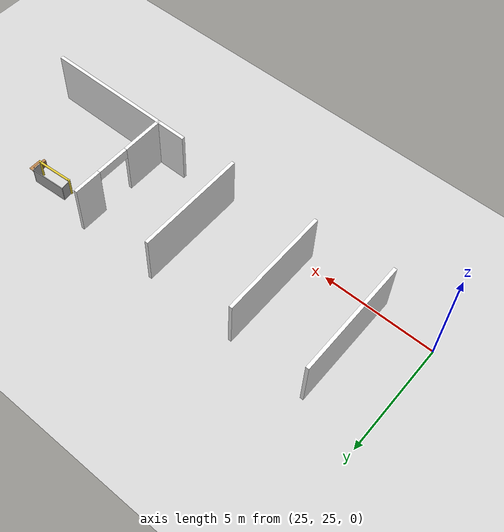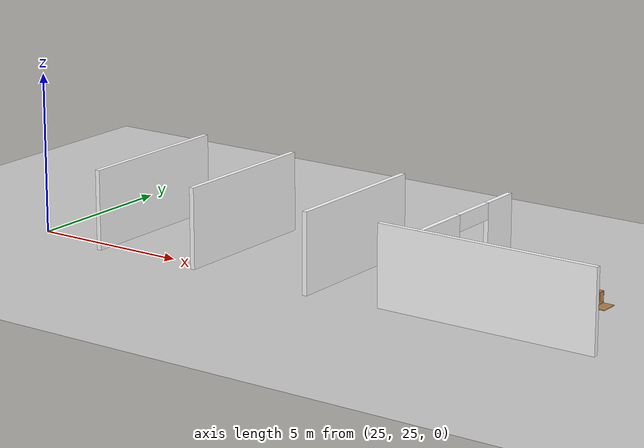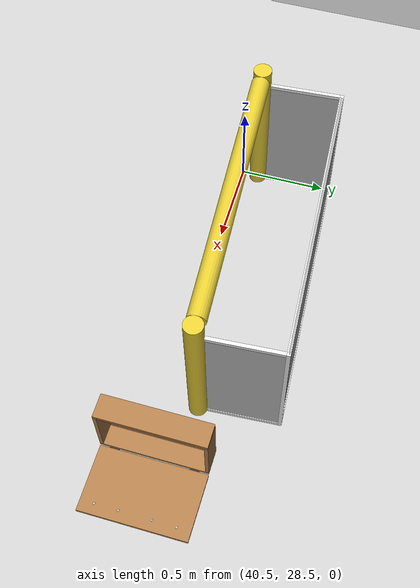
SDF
<sdf version="1.6">
 <world name="default">
  <model name="ground_plane">
   <static>1</static>
   <link name="link">
    <collision name="collision">
     <geometry><plane><normal>0 0 1</normal><size>100 100</size></plane></geometry>
     <surface><friction><ode><mu>100</mu><mu2>50</mu2></ode></friction></surface>
    </collision>
    <visual name="visual">
     <cast_shadows>0</cast_shadows>
     <geometry><plane><normal>0 0 1</normal><size>100 100</size></plane></geometry>
     <material>
      <script>
       <uri>model://office_env/materials/scripts</uri>
       <uri>model://office_env/materials/textures</uri>
       <name>wall</name>
      </script>
     </material>
    </visual>
   </link>
  </model>
  <model name="aule_N">
   <pose>0.1887 -1.4289 0 0 -0 0</pose>
   <link name="Wall_174">
    <collision name="Wall_174_Collision">
     <geometry><box><size>5 0.15 2.5</size></box></geometry>
     <pose>0 0 1.25 0 -0 0</pose>
    </collision>
    <visual name="Wall_174_Visual">
     <pose>0 0 1.25 0 -0 0</pose>
     <geometry><box><size>5 0.15 2.5</size></box></geometry>
     <material>
      <script>
       <uri>model://office_env/materials/scripts</uri>
       <uri>model://office_env/materials/textures</uri>
       <name>wall</name>
      </script>
      <ambient>1 1 1 1</ambient>
     </material>
    </visual>
    <pose>34.9984 28.4203 0 0 -0 1.5708</pose>
   </link>
   <link name="Wall_176">
    <collision name="Wall_176_Collision">
     <geometry><box><size>5.25 0.15 2.5</size></box></geometry>
     <pose>0 0 1.25 0 -0 0</pose>
    </collision>
    <visual name="Wall_176_Visual">
     <pose>0 0 1.25 0 -0 0</pose>
     <geometry><box><size>5.25 0.15 2.5</size></box></geometry>
     <material>
      <script>
       <uri>model://office_env/materials/scripts</uri>
       <uri>model://office_env/materials/textures</uri>
       <name>wall</name>
      </script>
      <ambient>1 1 1 1</ambient>
     </material>
    </visual>
    <pose>27.3703 28.4806 0 0 -0 1.5708</pose>
   </link>
   <link name="Wall_178">
    <collision name="Wall_178_Collision">
     <geometry><box><size>5 0.15 2.5</size></box></geometry>
     <pose>0 0 1.25 0 -0 0</pose>
    </collision>
    <visual name="Wall_178_Visual">
     <pose>0 0 1.25 0 -0 0</pose>
     <geometry><box><size>5 0.15 2.5</size></box></geometry>
     <material>
      <script>
       <uri>model://office_env/materials/scripts</uri>
       <uri>model://office_env/materials/textures</uri>
       <name>wall</name>
      </script>
      <ambient>1 1 1 1</ambient>
     </material>
    </visual>
    <pose>30.8596 28.4952 0 0 -0 1.5708</pose>
   </link>
   <link name="Wall_182">
    <collision name="Wall_182_Collision">
     <geometry><box><size>7 0.15 2.5</size></box></geometry>
     <pose>0 0 1.25 0 -0 0</pose>
    </collision>
    <visual name="Wall_182_Visual">
     <pose>0 0 1.25 0 -0 0</pose>
     <geometry><box><size>7 0.15 2.5</size></box></geometry>
     <material>
      <script>
       <uri>model://office_env/materials/scripts</uri>
       <uri>model://office_env/materials/textures</uri>
       <name>wall</name>
      </script>
      <ambient>1 1 1 1</ambient>
     </material>
    </visual>
    <pose>40.8006 26.2918 0 0 -0 0</pose>
   </link>
   <link name="Wall_184">
    <pose>38.6756 28.6028 0 0 -0 1.5708</pose>
    <visual name="Wall_184_Visual_0">
     <pose>-1.38657 0 1.25 0 -0 0</pose>
     <geometry><box><size>1.97686 0.15 2.5</size></box></geometry>
     <material>
      <script>
       <uri>model://office_env/materials/scripts</uri>
       <uri>model://office_env/materials/textures</uri>
       <name>wall</name>
      </script>
      <ambient>1 1 1 1</ambient>
     </material>
    </visual>
    <collision name="Wall_184_Collision_0">
     <geometry><box><size>1.97686 0.15 2.5</size></box></geometry>
     <pose>-1.38657 0 1.25 0 -0 0</pose>
    </collision>
    <visual name="Wall_184_Visual_1">
     <pose>1.73843 0 1.25 0 -0 0</pose>
     <geometry><box><size>1.27314 0.15 2.5</size></box></geometry>
     <material>
      <script>
       <uri>model://office_env/materials/scripts</uri>
       <uri>model://office_env/materials/textures</uri>
       <name>wall</name>
      </script>
      <ambient>1 1 1 1</ambient>
     </material>
    </visual>
    <collision name="Wall_184_Collision_1">
     <geometry><box><size>1.27314 0.15 2.5</size></box></geometry>
     <pose>1.73843 0 1.25 0 -0 0</pose>
    </collision>
    <visual name="Wall_184_Visual_2">
     <pose>0.351864 0 2.25 0 -0 0</pose>
     <geometry><box><size>1.5 0.15 0.5</size></box></geometry>
     <material>
      <script>
       <uri>model://office_env/materials/scripts</uri>
       <uri>model://office_env/materials/textures</uri>
       <name>wall</name>
      </script>
      <ambient>1 1 1 1</ambient>
     </material>
    </visual>
    <collision name="Wall_184_Collision_2">
     <geometry><box><size>1.5 0.15 0.5</size></box></geometry>
     <pose>0.351864 0 2.25 0 -0 0</pose>
    </collision>
   </link>
   <static>1</static>
  </model>
  <model name="RoboCup 2014 SPL Goal">
   <static>1</static>
   <link name="left_post">
    <pose>0 0.8 0.45 0 -0 0</pose>
    <collision name="collision">
     <geometry><cylinder><radius>0.05</radius><length>0.9</length></cylinder></geometry>
    </collision>
    <visual name="visual">
     <geometry><cylinder><radius>0.05</radius><length>0.9</length></cylinder></geometry>
     <material>
      <script><uri>file://media/materials/scripts/gazebo.material</uri><name>Gazebo/ZincYellow</name></script>
     </material>
    </visual>
   </link>
   <link name="left_support_horiz_lower">
    <pose>0.24 0.8 0.01 0 -0 0</pose>
    <collision name="collision"><geometry><box><size>0.38 0.02 0.02</size></box></geometry></collision>
    <visual name="visual">
     <geometry><box><size>0.38 0.02 0.02</size></box></geometry>
     <material>
      <script><uri>file://media/materials/scripts/gazebo.material</uri><name>Gazebo/White</name></script>
     </material>
    </visual>
   </link>
   <link name="left_support_horiz_upper">
    <pose>0.24 0.8 0.79 0 -0 0</pose>
    <collision name="collision"><geometry><box><size>0.38 0.02 0.02</size></box></geometry></collision>
    <visual name="visual">
     <geometry><box><size>0.38 0.02 0.02</size></box></geometry>
     <material>
      <script><uri>file://media/materials/scripts/gazebo.material</uri><name>Gazebo/White</name></script>
     </material>
    </visual>
   </link>
   <link name="left_support_vertical">
    <pose>0.44 0.8 0.4 3.14159 1.57079 3.14159</pose>
    <collision name="collision"><geometry><box><size>0.8 0.02 0.02</size></box></geometry></collision>
    <visual name="visual">
     <geometry><box><size>0.8 0.02 0.02</size></box></geometry>
     <material>
      <script><uri>file://media/materials/scripts/gazebo.material</uri><name>Gazebo/White</name></script>
     </material>
    </visual>
   </link>
   <link name="right_support_horiz_lower">
    <pose>0.24 -0.8 0.01 0 -0 0</pose>
    <collision name="collision"><geometry><box><size>0.38 0.02 0.02</size></box></geometry></collision>
    <visual name="visual">
     <geometry><box><size>0.38 0.02 0.02</size></box></geometry>
     <material>
      <script><uri>file://media/materials/scripts/gazebo.material</uri><name>Gazebo/White</name></script>
     </material>
    </visual>
   </link>
   <link name="right_support_horiz_upper">
    <pose>0.24 -0.8 0.79 0 -0 0</pose>
    <collision name="collision"><geometry><box><size>0.38 0.02 0.02</size></box></geometry></collision>
    <visual name="visual">
     <geometry><box><size>0.38 0.02 0.02</size></box></geometry>
     <material>
      <script><uri>file://media/materials/scripts/gazebo.material</uri><name>Gazebo/White</name></script>
     </material>
    </visual>
   </link>
   <link name="right_support_vertical">
    <pose>0.44 -0.8 0.4 3.14159 1.57079 3.14159</pose>
    <collision name="collision"><geometry><box><size>0.8 0.02 0.02</size></box></geometry></collision>
    <visual name="visual">
     <geometry><box><size>0.8 0.02 0.02</size></box></geometry>
     <material>
      <script><uri>file://media/materials/scripts/gazebo.material</uri><name>Gazebo/White</name></script>
     </material>
    </visual>
   </link>
   <link name="center_support_horiz_lower">
    <pose>0.44 0 0.01 3.14159 1.57079 3.14159</pose>
    <collision name="collision"><geometry><box><size>0.02 1.58 0.02</size></box></geometry></collision>
    <visual name="visual">
     <geometry><box><size>0.02 1.58 0.02</size></box></geometry>
     <material>
      <script><uri>file://media/materials/scripts/gazebo.material</uri><name>Gazebo/White</name></script>
     </material>
    </visual>
   </link>
   <link name="center_support_horiz_upper">
    <pose>0.44 0 0.79 3.14159 1.57079 3.14159</pose>
    <collision name="collision"><geometry><box><size>0.02 1.58 0.02</size></box></geometry></collision>
    <visual name="visual">
     <geometry><box><size>0.02 1.58 0.02</size></box></geometry>
     <material>
      <script><uri>file://media/materials/scripts/gazebo.material</uri><name>Gazebo/White</name></script>
     </material>
    </visual>
   </link>
   <link name="right_post">
    <pose>0 -0.8 0.45 0 -0 0</pose>
    <collision name="collision">
     <geometry><cylinder><radius>0.05</radius><length>0.9</length></cylinder></geometry>
    </collision>
    <visual name="visual">
     <geometry><cylinder><radius>0.05</radius><length>0.9</length></cylinder></geometry>
     <material>
      <script><uri>file://media/materials/scripts/gazebo.material</uri><name>Gazebo/ZincYellow</name></script>
     </material>
    </visual>
   </link>
   <link name="crossbar">
    <pose>0 0 0.85 1.57 1.57 0</pose>
    <collision name="collision">
     <geometry><cylinder><radius>0.05</radius><length>1.5</length></cylinder></geometry>
    </collision>
    <visual name="visual">
     <geometry><cylinder><radius>0.05</radius><length>1.5</length></cylinder></geometry>
     <material>
      <script><uri>file://media/materials/scripts/gazebo.material</uri><name>Gazebo/ZincYellow</name></script>
     </material>
    </visual>
   </link>
   <link name="center_net">
    <pose>0.44 0 0.4 0 -0 0</pose>
    <collision name="collision"><geometry><box><size>0.01 1.6 0.8</size></box></geometry></collision>
    <visual name="visual">
     <geometry><box><size>0.01 1.6 0.8</size></box></geometry>
     <material>
      <script>
       <uri>model://robocup09_spl_field/materials/scripts/</uri>
       <uri>model://robocup09_spl_field/materials/textures/</uri>
       <name>RoboCup/Net</name>
      </script>
     </material>
    </visual>
   </link>
   <link name="left_net">
    <pose>0.24 0.8 0.4 0 -0 0</pose>
    <collision name="collision"><geometry><box><size>0.38 0.01 0.76</size></box></geometry></collision>
    <visual name="visual">
     <geometry><box><size>0.38 0.01 0.76</size></box></geometry>
     <material>
      <script>
       <uri>model://robocup09_spl_field/materials/scripts/</uri>
       <uri>model://robocup09_spl_field/materials/textures/</uri>
       <name>RoboCup/Net</name>
      </script>
     </material>
    </visual>
   </link>
   <link name="right_net">
    <pose>0.24 -0.8 0.4 0 -0 0</pose>
    <collision name="collision"><geometry><box><size>0.38 0.01 0.76</size></box></geometry></collision>
    <visual name="visual">
     <geometry><box><size>0.38 0.01 0.76</size></box></geometry>
     <material>
      <script>
       <uri>model://robocup09_spl_field/materials/scripts/</uri>
       <uri>model://robocup09_spl_field/materials/textures/</uri>
       <name>RoboCup/Net</name>
      </script>
     </material>
    </visual>
   </link>
   <pose>41.3092 28.6447 0 0 -0 1.63389</pose>
  </model>
  <model name="wooden_case">
   <link name="base">
    <pose>0 0 0.024 0 -0 0</pose>
    <inertial>
     <pose>-0.022184 0 0.171592 0 -0 0</pose>
     <mass>3.96264</mass>
     <inertia>
      <ixx>0.213536</ixx>
      <ixy>0</ixy>
      <ixz>0.000779377</ixz>
      <iyy>0.0708943</iyy>
      <iyz>0</iyz>
      <izz>0.154604</izz>
     </inertia>
    </inertial>
    <collision name="collision_back">
     <pose>-0.053975 0 0.1778 0 -0 0</pose>
     <geometry><box><size>0.01905 0.5461 0.3175</size></box></geometry>
     <surface>
      <contact>
       <poissons_ratio>0.347</poissons_ratio>
       <elastic_modulus>8.8e+09</elastic_modulus>
       <ode><kp>100000</kp><kd>100</kd><max_vel>100</max_vel><min_depth>0.001</min_depth></ode>
      </contact>
      <friction>
       <torsional>
        <coefficient>1</coefficient>
        <use_patch_radius>0</use_patch_radius>
        <surface_radius>0.01</surface_radius>
       </torsional>
      </friction>
     </surface>
    </collision>
    <visual name="visual_back">
     <pose>-0.053975 0 0.1778 0 -0 0</pose>
     <geometry><box><size>0.01905 0.5461 0.3175</size></box></geometry>
     <material>
      <script><uri>file://media/materials/scripts/gazebo.material</uri><name>Gazebo/Wood</name></script>
     </material>
    </visual>
    <collision name="collision_bottom">
     <pose>0 0 0.009525 0 -0 0</pose>
     <geometry><box><size>0.127 0.5842 0.01905</size></box></geometry>
     <surface>
      <contact>
       <poissons_ratio>0.347</poissons_ratio>
       <elastic_modulus>8.8e+09</elastic_modulus>
       <ode><kp>100000</kp><kd>100</kd><max_vel>100</max_vel><min_depth>0.001</min_depth></ode>
      </contact>
      <friction>
       <torsional>
        <coefficient>1</coefficient>
        <use_patch_radius>0</use_patch_radius>
        <surface_radius>0.01</surface_radius>
       </torsional>
      </friction>
     </surface>
    </collision>
    <visual name="visual_bottom">
     <pose>0 0 0.009525 0 -0 0</pose>
     <geometry><box><size>0.127 0.5842 0.01905</size></box></geometry>
     <material>
      <script><uri>file://media/materials/scripts/gazebo.material</uri><name>Gazebo/Wood</name></script>
     </material>
    </visual>
    <collision name="collision_top">
     <pose>0 0 0.346075 0 -0 0</pose>
     <geometry><box><size>0.127 0.5842 0.01905</size></box></geometry>
     <surface>
      <contact>
       <poissons_ratio>0.347</poissons_ratio>
       <elastic_modulus>8.8e+09</elastic_modulus>
       <ode><kp>100000</kp><kd>100</kd><max_vel>100</max_vel><min_depth>0.001</min_depth></ode>
      </contact>
      <friction>
       <torsional>
        <coefficient>1</coefficient>
        <use_patch_radius>0</use_patch_radius>
        <surface_radius>0.01</surface_radius>
       </torsional>
      </friction>
     </surface>
    </collision>
    <visual name="visual_top">
     <pose>0 0 0.346075 0 -0 0</pose>
     <geometry><box><size>0.127 0.5842 0.01905</size></box></geometry>
     <material>
      <script><uri>file://media/materials/scripts/gazebo.material</uri><name>Gazebo/Wood</name></script>
     </material>
    </visual>
    <collision name="collision_left">
     <pose>0 -0.282575 0.1778 0 -0 0</pose>
     <geometry><box><size>0.127 0.01905 0.3175</size></box></geometry>
     <surface>
      <contact>
       <poissons_ratio>0.347</poissons_ratio>
       <elastic_modulus>8.8e+09</elastic_modulus>
       <ode><kp>100000</kp><kd>100</kd><max_vel>100</max_vel><min_depth>0.001</min_depth></ode>
      </contact>
      <friction>
       <torsional>
        <coefficient>1</coefficient>
        <use_patch_radius>0</use_patch_radius>
        <surface_radius>0.01</surface_radius>
       </torsional>
      </friction>
     </surface>
    </collision>
    <visual name="visual_left">
     <pose>0 -0.282575 0.1778 0 -0 0</pose>
     <geometry><box><size>0.127 0.01905 0.3175</size></box></geometry>
     <material>
      <script><uri>file://media/materials/scripts/gazebo.material</uri><name>Gazebo/Wood</name></script>
     </material>
    </visual>
    <collision name="collision_right">
     <pose>0 0.282575 0.1778 0 -0 0</pose>
     <geometry><box><size>0.127 0.01905 0.3175</size></box></geometry>
     <surface>
      <contact>
       <poissons_ratio>0.347</poissons_ratio>
       <elastic_modulus>8.8e+09</elastic_modulus>
       <ode><kp>100000</kp><kd>100</kd><max_vel>100</max_vel><min_depth>0.001</min_depth></ode>
      </contact>
      <friction>
       <torsional>
        <coefficient>1</coefficient>
        <use_patch_radius>0</use_patch_radius>
        <surface_radius>0.01</surface_radius>
       </torsional>
      </friction>
     </surface>
    </collision>
    <visual name="visual_right">
     <pose>0 0.282575 0.1778 0 -0 0</pose>
     <geometry><box><size>0.127 0.01905 0.3175</size></box></geometry>
     <material>
      <script><uri>file://media/materials/scripts/gazebo.material</uri><name>Gazebo/Wood</name></script>
     </material>
    </visual>
    <collision name="collision_block_left">
     <pose>0.0095 -0.2151 -0.012 0 -0 0</pose>
     <geometry><box><size>0.108 0.05 0.024</size></box></geometry>
     <surface>
      <contact>
       <poissons_ratio>0.347</poissons_ratio>
       <elastic_modulus>8.8e+09</elastic_modulus>
       <ode><kp>100000</kp><kd>100</kd><max_vel>100</max_vel><min_depth>0.001</min_depth></ode>
      </contact>
      <friction>
       <torsional>
        <coefficient>1</coefficient>
        <use_patch_radius>0</use_patch_radius>
        <surface_radius>0.01</surface_radius>
       </torsional>
      </friction>
     </surface>
    </collision>
    <visual name="visual_block_left">
     <pose>0.0095 -0.2151 -0.012 0 -0 0</pose>
     <geometry><box><size>0.108 0.05 0.024</size></box></geometry>
     <material>
      <script><uri>file://media/materials/scripts/gazebo.material</uri><name>Gazebo/Wood</name></script>
     </material>
    </visual>
    <collision name="collision_block_right">
     <pose>0.0095 0.2151 -0.012 0 -0 0</pose>
     <geometry><box><size>0.108 0.05 0.024</size></box></geometry>
     <surface>
      <contact>
       <poissons_ratio>0.347</poissons_ratio>
       <elastic_modulus>8.8e+09</elastic_modulus>
       <ode><kp>100000</kp><kd>100</kd><max_vel>100</max_vel><min_depth>0.001</min_depth></ode>
      </contact>
      <friction>
       <torsional>
        <coefficient>1</coefficient>
        <use_patch_radius>0</use_patch_radius>
        <surface_radius>0.01</surface_radius>
       </torsional>
      </friction>
     </surface>
    </collision>
    <visual name="visual_block_right">
     <pose>0.0095 0.2151 -0.012 0 -0 0</pose>
     <geometry><box><size>0.108 0.05 0.024</size></box></geometry>
     <material>
      <script><uri>file://media/materials/scripts/gazebo.material</uri><name>Gazebo/Wood</name></script>
     </material>
    </visual>
   </link>
   <link name="lid">
    <pose>0.243775 0 0.009525 0 -0 0</pose>
    <inertial>
     <mass>1.97874</mass>
     <inertia>
      <ixx>0.0563367</ixx>
      <ixy>0</ixy>
      <ixz>0</ixz>
      <iyy>0.020911</iyy>
      <iyz>0</iyz>
      <izz>0.0771281</izz>
     </inertia>
    </inertial>
    <collision name="collision">
     <geometry><box><size>0.3556 0.5842 0.01905</size></box></geometry>
     <surface>
      <contact>
       <poissons_ratio>0.347</poissons_ratio>
       <elastic_modulus>8.8e+09</elastic_modulus>
       <ode><kp>100000</kp><kd>100</kd><max_vel>100</max_vel><min_depth>0.001</min_depth></ode>
      </contact>
      <friction>
       <torsional>
        <coefficient>1</coefficient>
        <use_patch_radius>0</use_patch_radius>
        <surface_radius>0.01</surface_radius>
       </torsional>
      </friction>
     </surface>
    </collision>
    <visual name="visual">
     <geometry><box><size>0.3556 0.5842 0.01905</size></box></geometry>
     <material>
      <script><uri>file://media/materials/scripts/gazebo.material</uri><name>Gazebo/Wood</name></script>
     </material>
    </visual>
    <visual name="tee_nut_1">
     <pose>0.122 -0.216 0 0 -0 0</pose>
     <geometry><cylinder><radius>0.00635</radius><length>0.0192405</length></cylinder></geometry>
     <material>
      <script>
       <uri>model://office_env/materials/scripts</uri>
       <uri>model://office_env/materials/textures</uri>
       <name>wall</name>
      </script>
     </material>
    </visual>
    <visual name="tee_nut_2">
     <pose>0.122 -0.088 0 0 -0 0</pose>
     <geometry><cylinder><radius>0.00635</radius><length>0.0192405</length></cylinder></geometry>
     <material>
      <script>
       <uri>model://office_env/materials/scripts</uri>
       <uri>model://office_env/materials/textures</uri>
       <name>wall</name>
      </script>
     </material>
    </visual>
    <visual name="tee_nut_3">
     <pose>0.122 0.088 0 0 -0 0</pose>
     <geometry><cylinder><radius>0.00635</radius><length>0.0192405</length></cylinder></geometry>
     <material>
      <script>
       <uri>model://office_env/materials/scripts</uri>
       <uri>model://office_env/materials/textures</uri>
       <name>wall</name>
      </script>
     </material>
    </visual>
    <visual name="tee_nut_4">
     <pose>0.122 0.216 0 0 -0 0</pose>
     <geometry><cylinder><radius>0.00635</radius><length>0.0192405</length></cylinder></geometry>
     <material>
      <script>
       <uri>model://office_env/materials/scripts</uri>
       <uri>model://office_env/materials/textures</uri>
       <name>wall</name>
      </script>
     </material>
    </visual>
   </link>
   <joint name="lid_hinge" type="revolute">
    <pose>-0.1778 0 0.01905 0 -0 0</pose>
    <parent>base</parent>
    <child>lid</child>
    <axis>
     <xyz>0 1 0</xyz>
     <limit><upper>0.523599</upper><lower>-1.5708</lower></limit>
     <use_parent_model_frame>0</use_parent_model_frame>
     <dynamics><spring_reference>0</spring_reference><spring_stiffness>0</spring_stiffness></dynamics>
    </axis>
   </joint>
   <pose>42.3951 28.5668 0.008943 0 -0.000428 -1.8e-05</pose>
  </model>
 </world>
</sdf>
